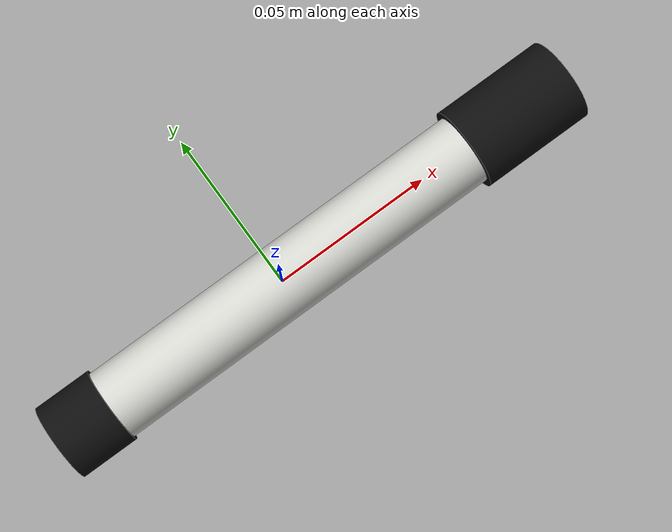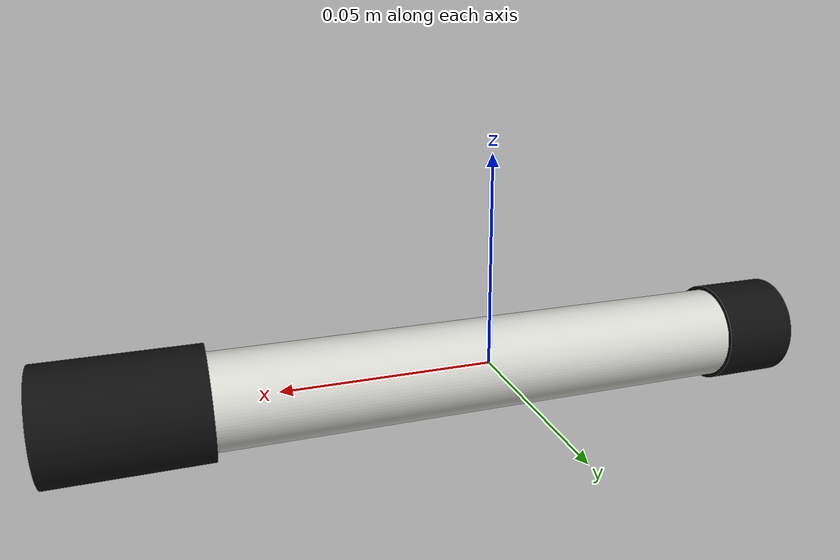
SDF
<?xml version="1.0"?><sdf version="1.6"><model name="marker_pen"><static>false</static><link name="link"><visual name="body"><geometry><mesh><uri>model://marker_pen/meshes/marker_body.stl</uri></mesh></geometry><material><ambient>0.82 0.82 0.8 1</ambient><diffuse>0.82 0.82 0.8 1</diffuse><specular>0.08 0.08 0.08 1</specular></material></visual><visual name="cap"><geometry><mesh><uri>model://marker_pen/meshes/marker_cap.stl</uri></mesh></geometry><material><ambient>0.05 0.05 0.05 1</ambient><diffuse>0.05 0.05 0.05 1</diffuse><specular>0.08 0.08 0.08 1</specular></material></visual><visual name="end"><geometry><mesh><uri>model://marker_pen/meshes/marker_end.stl</uri></mesh></geometry><material><ambient>0.05 0.05 0.05 1</ambient><diffuse>0.05 0.05 0.05 1</diffuse><specular>0.08 0.08 0.08 1</specular></material></visual><inertial><mass>0.03</mass><inertia><ixx>0.000005</ixx><iyy>0.000075</iyy><izz>0.000075</izz><ixy>0</ixy><ixz>0</ixz><iyz>0</iyz></inertia></inertial><collision name="pen"><pose>0 0 0 0 1.5708 0</pose><geometry><cylinder><radius>0.013</radius><length>0.16</length></cylinder></geometry></collision></link></model></sdf>
